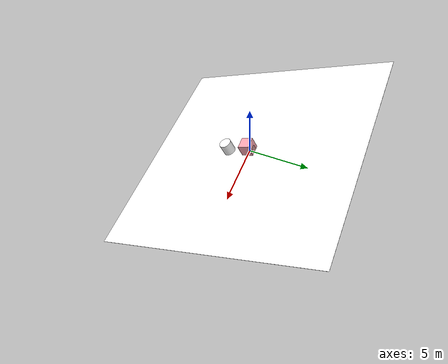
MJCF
<mujoco model="slope">
    <compiler angle="degree" />
    <visual>
        <!--scn flags="5"/-->
        <quality shadowsize="4096" />
        <global offwidth="800" offheight="800" />
		<map fogstart="2" fogend="10" />
        <rgba com="0.8 0.1 0.1 0.2" />
        <!--headlight diffuse="0.8 0.8 0.8" /-->
    </visual>
    <option density="1.2" wind="-1.7 0 0" cone="elliptic" >
        <flag warmstart="enable" />
    </option>
    <default>
        <geom friction="0.2" margin="0" condim="6" rgba="0.95 0.6 0.6 1.0" />
    </default>
    <size njmax="1000" nconmax="1000" />
    <asset>

        <texture type="skybox" builtin="gradient" width="100" height="100" rgb1="0 0 0" rgb2="0 0 0" />
        <texture name="grid" type="2d" builtin="checker" rgb1="0.1 0.3 0.6" rgb2="0.0 0.0 0.10" width="1024" height="1024" />
        <material name="grid" texture="grid" texrepeat="6 6" reflectance="0.1" specular="0.6"  shininess="0.9" />

        <texture name="marble" type="cube" file="models/textures/marble.png" />
        <material name="marble" texture="marble" reflectance="0" texrepeat="1 1" />

        <texture name="cross" type="cube" builtin="flat" mark="cross" gridsize="2 2" markrgb="0 0 0" width="100" height="100"/>
        <material name="cross" texture="cross" texrepeat="4 4" />
    </asset>
    <contact>
        <pair geom1="floor" geom2="box" friction="0.2 0.2" />

    </contact>
    <worldbody>

        <light diffuse="0.9 0.9 0.9" pos="0 0 6" exponent="0.1" target="box" mode="fixed"/>
        <light name="extra" dir="0 0 -1" pos="-1 -3 8" exponent="1" />

        <geom name="floor" type="plane" euler="25 0 0" size="10 10 30" rgba="1 1 1 1" material="grid" />

        <!-- Centered at floor after translation, ie y=z*sin(25), z=z*cos(25) -->
        <body pos="0 -0.211309 0.453154" euler="25 0 0" name="box">
            <freejoint />
			<geom name="box" type="box" material="cross" size="0.5 0.5 0.5" rgba="1.0 0.663 0.71 0.99" mass="0.1" contype="1" conaffinity="2"/>
			<body name="insidebox" pos="0 0 -0.25" >
				<geom name="insidebox" type="box" material="marble" contype="0" conaffinity="0" size="0.25 0.5 0.25" rgba="0.8 0.6 0.6 0.8" mass="1" />
			</body>
        </body>

        <body pos="0 -2.0239 -0.392083" euler="25 0 0">
		   <geom name="obstacle" type="cylinder" size="0.5 0.5" rgba="1 1 1 1" contype="1" friction="0.2" />
        </body>

    </worldbody>
</mujoco>
